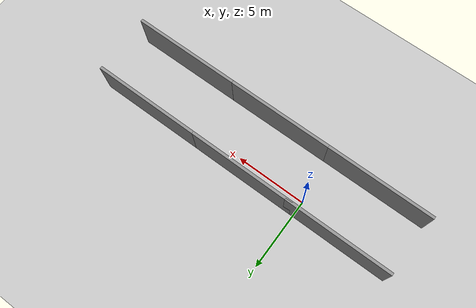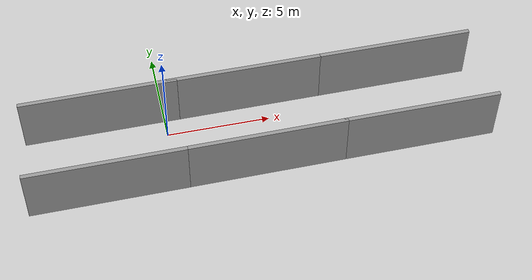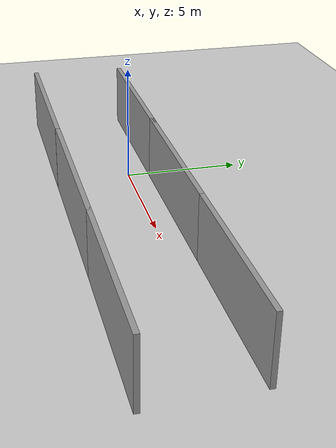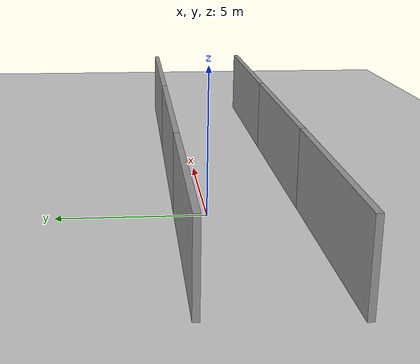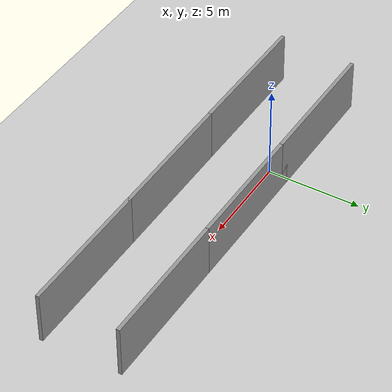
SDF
<sdf version="1.4">
 <world name="default">
  <light name="sun" type="directional">
   <pose>0 0 10 0 -0 0</pose>
   <diffuse>0.8 0.8 0.8 1</diffuse>
   <specular>0.2 0.2 0.2 1</specular>
   <attenuation>
    <range>1000</range>
    <constant>0.9</constant>
    <linear>0.01</linear>
    <quadratic>0.001</quadratic>
   </attenuation>
   <direction>-0.5 0.1 -0.9</direction>
  </light>
  <model name="ground_plane">
   <static>1</static>
   <link name="link">
    <collision name="collision">
     <geometry><plane><normal>0 0 1</normal><size>100 100</size></plane></geometry>
     <surface><friction><ode><mu>100</mu><mu2>50</mu2></ode></friction></surface>
    </collision>
    <visual name="visual">
     <cast_shadows>0</cast_shadows>
     <geometry><plane><normal>0 0 1</normal><size>100 100</size></plane></geometry>
     <material>
      <script><uri>file://media/materials/scripts/gazebo.material</uri><name>Gazebo/Grey</name></script>
     </material>
    </visual>
    <velocity_decay><linear>0</linear><angular>0</angular></velocity_decay>
   </link>
  </model>
  <physics type="ode">
   <max_step_size>0.001</max_step_size>
   <real_time_factor>1</real_time_factor>
   <real_time_update_rate>1000</real_time_update_rate>
   <gravity>0 0 -9.8</gravity>
  </physics>
  <scene><ambient>0.4 0.4 0.4 1</ambient><background>0.7 0.7 0.7 1</background><shadows>1</shadows></scene>
  <spherical_coordinates>
   <surface_model>EARTH_WGS84</surface_model>
   <latitude_deg>0</latitude_deg>
   <longitude_deg>0</longitude_deg>
   <elevation>0</elevation>
   <heading_deg>0</heading_deg>
  </spherical_coordinates>
  <model name="grey_wall_1">
   <static>1</static>
   <link name="link">
    <pose>0 0 1.4 0 -0 0</pose>
    <collision name="collision"><geometry><box><size>7.5 0.2 2.8</size></box></geometry></collision>
    <visual name="visual">
     <cast_shadows>0</cast_shadows>
     <geometry><box><size>7.5 0.2 2.8</size></box></geometry>
     <material>
      <script>
       <uri>model://grey_wall/materials/scripts</uri>
       <uri>model://grey_wall/materials/textures</uri>
       <name>vrc/grey_wall</name>
      </script>
     </material>
    </visual>
    <velocity_decay><linear>0</linear><angular>0</angular></velocity_decay>
   </link>
   <pose>-3.25184 -3.19463 0 0 -0 0</pose>
  </model>
  <model name="grey_wall_2">
   <static>1</static>
   <link name="link">
    <pose>0 0 1.4 0 -0 0</pose>
    <collision name="collision"><geometry><box><size>7.5 0.2 2.8</size></box></geometry></collision>
    <visual name="visual">
     <cast_shadows>0</cast_shadows>
     <geometry><box><size>7.5 0.2 2.8</size></box></geometry>
     <material>
      <script>
       <uri>model://grey_wall/materials/scripts</uri>
       <uri>model://grey_wall/materials/textures</uri>
       <name>vrc/grey_wall</name>
      </script>
     </material>
    </visual>
    <velocity_decay><linear>0</linear><angular>0</angular></velocity_decay>
   </link>
   <pose>4.23787 -3.18305 0 0 0 -3.13954</pose>
  </model>
  <model name="grey_wall_7">
   <static>1</static>
   <link name="link">
    <pose>0 0 1.4 0 -0 0</pose>
    <collision name="collision"><geometry><box><size>7.5 0.2 2.8</size></box></geometry></collision>
    <visual name="visual">
     <cast_shadows>0</cast_shadows>
     <geometry><box><size>7.5 0.2 2.8</size></box></geometry>
     <material>
      <script>
       <uri>model://grey_wall/materials/scripts</uri>
       <uri>model://grey_wall/materials/textures</uri>
       <name>vrc/grey_wall</name>
      </script>
     </material>
    </visual>
    <velocity_decay><linear>0</linear><angular>0</angular></velocity_decay>
   </link>
   <pose>-3 1 0 0 -0 0</pose>
  </model>
  <model name="grey_wall_8">
   <static>1</static>
   <link name="link">
    <pose>0 0 1.4 0 -0 0</pose>
    <collision name="collision"><geometry><box><size>7.5 0.2 2.8</size></box></geometry></collision>
    <visual name="visual">
     <cast_shadows>0</cast_shadows>
     <geometry><box><size>7.5 0.2 2.8</size></box></geometry>
     <material>
      <script>
       <uri>model://grey_wall/materials/scripts</uri>
       <uri>model://grey_wall/materials/textures</uri>
       <name>vrc/grey_wall</name>
      </script>
     </material>
    </visual>
    <velocity_decay><linear>0</linear><angular>0</angular></velocity_decay>
   </link>
   <pose>4 1 0 0 -0 0</pose>
  </model>
  <model name="grey_wall_9">
   <static>1</static>
   <link name="link">
    <pose>0 0 1.4 0 -0 0</pose>
    <collision name="collision"><geometry><box><size>7.5 0.2 2.8</size></box></geometry></collision>
    <visual name="visual">
     <cast_shadows>0</cast_shadows>
     <geometry><box><size>7.5 0.2 2.8</size></box></geometry>
     <material>
      <script>
       <uri>model://grey_wall/materials/scripts</uri>
       <uri>model://grey_wall/materials/textures</uri>
       <name>vrc/grey_wall</name>
      </script>
     </material>
    </visual>
    <velocity_decay><linear>0</linear><angular>0</angular></velocity_decay>
   </link>
   <pose>11.4724 1 0 0 -0 0</pose>
  </model>
  <model name="grey_wall_10">
   <static>1</static>
   <link name="link">
    <pose>0 0 1.4 0 -0 0</pose>
    <collision name="collision"><geometry><box><size>7.5 0.2 2.8</size></box></geometry></collision>
    <visual name="visual">
     <cast_shadows>0</cast_shadows>
     <geometry><box><size>7.5 0.2 2.8</size></box></geometry>
     <material>
      <script>
       <uri>model://grey_wall/materials/scripts</uri>
       <uri>model://grey_wall/materials/textures</uri>
       <name>vrc/grey_wall</name>
      </script>
     </material>
    </visual>
    <velocity_decay><linear>0</linear><angular>0</angular></velocity_decay>
   </link>
   <pose>11.5811 -3.17518 0 0 -0 0</pose>
  </model>
 </world>
</sdf>
